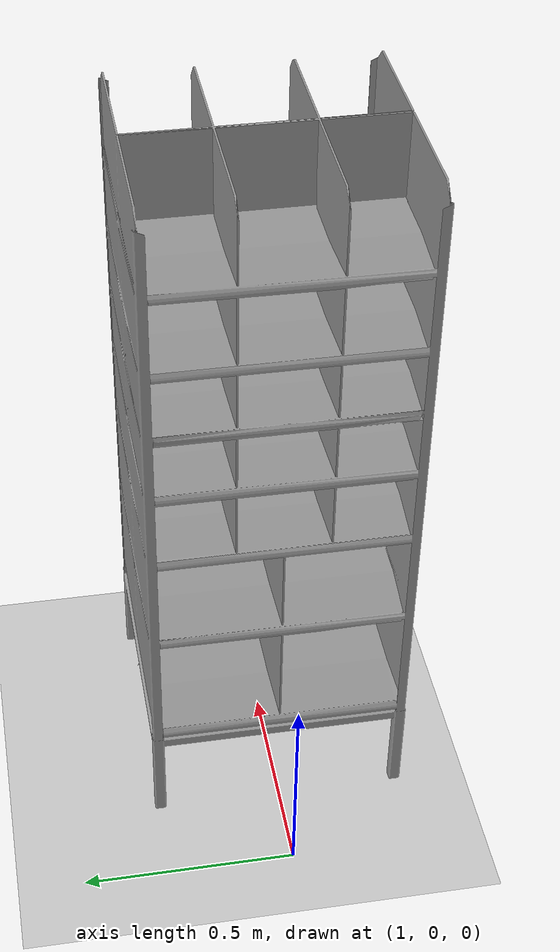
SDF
<?xml version="1.0" ?>
<sdf version="1.3">
  <world name="default">
    <!-- A global light source -->
    <include>
      <uri>model://sun</uri>
    </include>

    <!-- A ground plane -->
    <include>
      <uri>model://ground_plane</uri>
    </include>

    <include>
        <uri>model://kiva_pod</uri>
        <name>shelf_1</name>
        <pose>1.5 0 0 0 0 1.5708</pose>
    </include>

  </world>
</sdf>

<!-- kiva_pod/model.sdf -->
<sdf version="1.4">
  <model name="Amazon Pod">
    <link name="pod_link">
      <inertial>
        <pose>0.0 0.0 1.2045 0 0 0</pose>
        <mass>76.26</mass>
        <inertia>
          <ixx>47</ixx>
          <ixy>-0.003456</ixy>
          <ixz>0.001474</ixz>
          <izz>13.075</izz>
          <iyz>-0.014439</iyz>
          <iyy>47</iyy>
        </inertia>
      </inertial>

      <visual name="pod_visual">
        <pose>0 0 0 1.5707 0 0 </pose>
        <material>
          <script>
            <uri>file://media/materials/scripts/gazebo.material</uri>
            <name>Gazebo/Grey</name>
          </script>
        </material>
        <geometry>
          <mesh>
			<scale>0.70 0.70 0.70</scale>
            <uri>model://kiva_pod/meshes/pod_lowres.stl</uri>
          </mesh>
        </geometry>
      </visual>

      <collision name="pod_collision">
        <pose>0 0 0 1.5707 0 0</pose>
        <geometry>
          <mesh>
			<scale>0.70 0.70 0.70</scale>
            <uri>model://kiva_pod/meshes/pod_lowres.stl</uri>
          </mesh>
        </geometry>
        <surface>
          <friction>
            <ode>
              <mu>0.8</mu>
              <mu2>0.8</mu2>
              <fdir1>0.0 0.0 0.0</fdir1>
              <slip1>1.0</slip1>
              <slip2>1.0</slip2>
            </ode>
          </friction>
        </surface>
      </collision>

    </link>
  </model>
</sdf>
